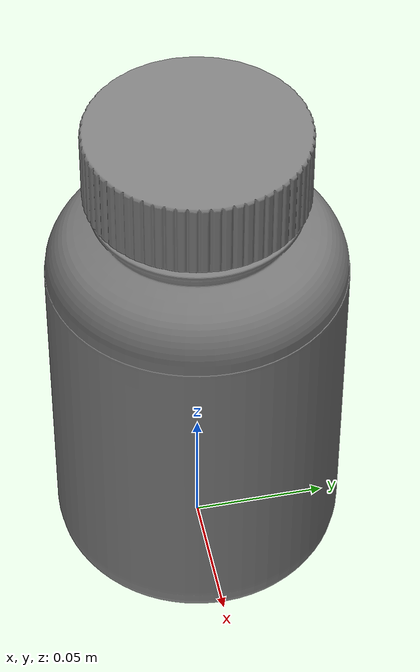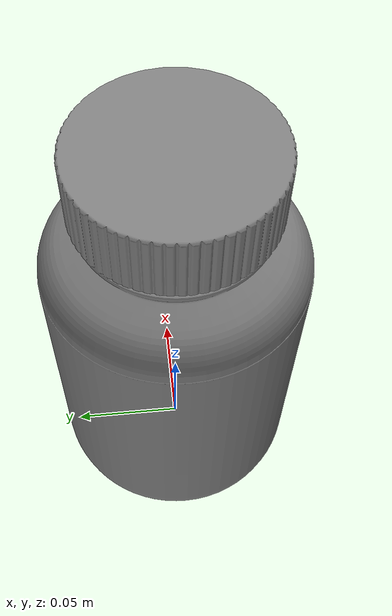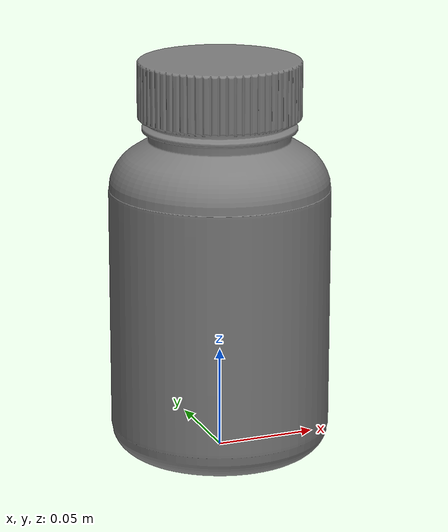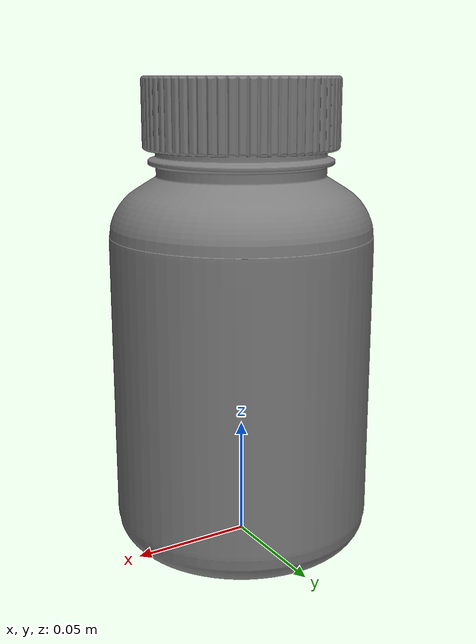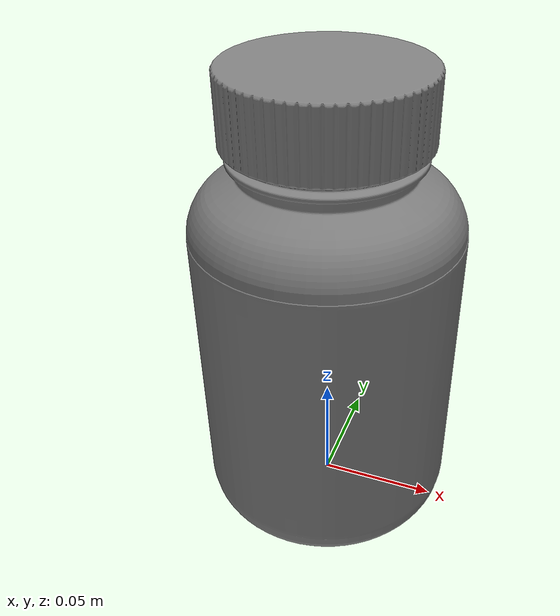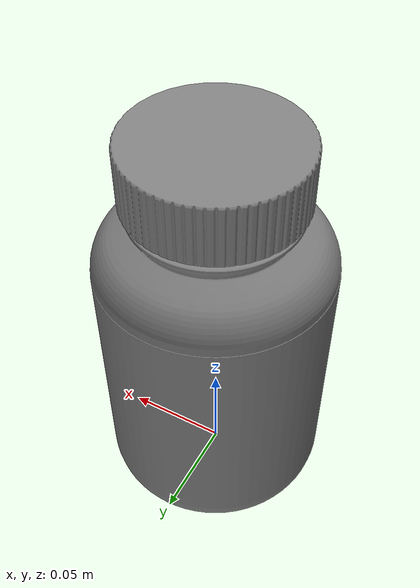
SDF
<?xml version='1.0'?>
<sdf version='1.7'>
  <model name='Medicine_Bottle'>
    <link name='medicine_bottle_link'>
      <self_collide>0</self_collide>
      <enable_wind>0</enable_wind>
      <kinematic>0</kinematic>
      <pose>0 0 0 0 -0 0</pose>
      <visual name='visual'>
        <geometry>
          <mesh>
            <uri>model://Medicine_Bottle/meshes/Medicine_Bottle.stl</uri>
            <scale>0.1 0.1 0.1</scale>
          </mesh>
        </geometry>
        <material>
          <ambient>0.5 0.5 0.5 1</ambient>
          <diffuse>0.5 0.5 0.5 1</diffuse>
          <specular>0.1 0.1 0.1 1</specular>
          <shader type='pixel'/>
          <script>
            <name>ModelPreview_1::medicine_bottle_link::visual_MATERIAL_</name>
            <uri>__default__</uri>
          </script>
        </material>
        <pose>0 0 0 0 -0 0</pose>
        <transparency>0</transparency>
        <cast_shadows>1</cast_shadows>
      </visual>
      <collision name='collision'>
        <laser_retro>0</laser_retro>
        <max_contacts>10</max_contacts>
        <pose>0 0 0 0 -0 0</pose>
        <geometry>
          <mesh>
            <uri>/home/azif/xarm7_ros2_simulation/xarm_gazebo/worlds/models/Medicine_Bottle/meshes/Medicine_Bottle.stl</uri>
            <scale>0.1 0.1 0.1</scale>
          </mesh>
        </geometry>
        <surface>
          <friction>
            <ode>
              <mu>1</mu>
              <mu2>1</mu2>
              <fdir1>0 0 0</fdir1>
              <slip1>0</slip1>
              <slip2>0</slip2>
            </ode>
            <torsional>
              <coefficient>1</coefficient>
              <patch_radius>0</patch_radius>
              <surface_radius>0</surface_radius>
              <use_patch_radius>1</use_patch_radius>
              <ode>
                <slip>0</slip>
              </ode>
            </torsional>
          </friction>
          <bounce>
            <restitution_coefficient>0</restitution_coefficient>
            <threshold>1e+06</threshold>
          </bounce>
          <contact>
            <collide_without_contact>0</collide_without_contact>
            <collide_without_contact_bitmask>1</collide_without_contact_bitmask>
            <collide_bitmask>1</collide_bitmask>
            <ode>
              <soft_cfm>0</soft_cfm>
              <soft_erp>0.2</soft_erp>
              <kp>1e+13</kp>
              <kd>1</kd>
              <max_vel>0.01</max_vel>
              <min_depth>0</min_depth>
            </ode>
            <bullet>
              <split_impulse>1</split_impulse>
              <split_impulse_penetration_threshold>-0.01</split_impulse_penetration_threshold>
              <soft_cfm>0</soft_cfm>
              <soft_erp>0.2</soft_erp>
              <kp>1e+13</kp>
              <kd>1</kd>
            </bullet>
          </contact>
        </surface>
      </collision>
    </link>
    <static>0</static>
    <allow_auto_disable>1</allow_auto_disable>
  </model>
</sdf>
